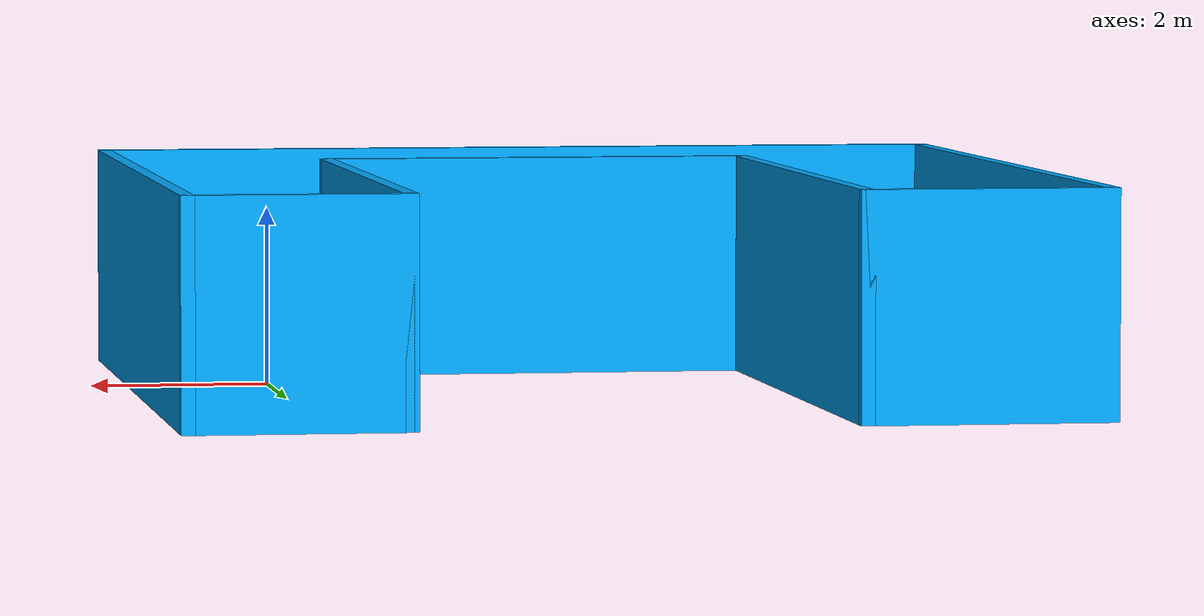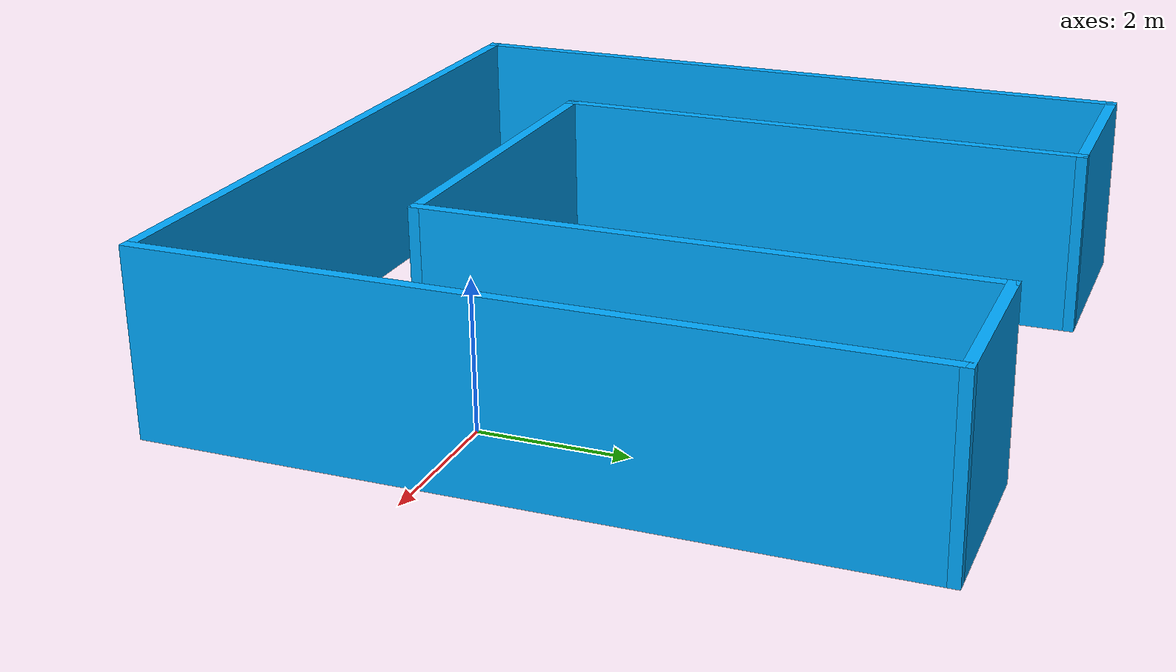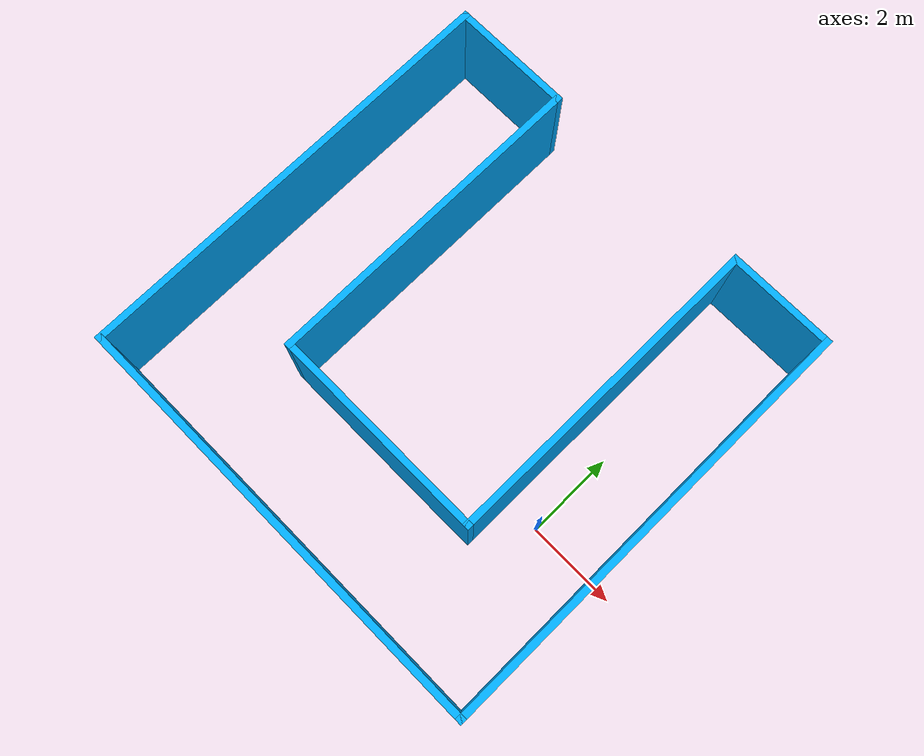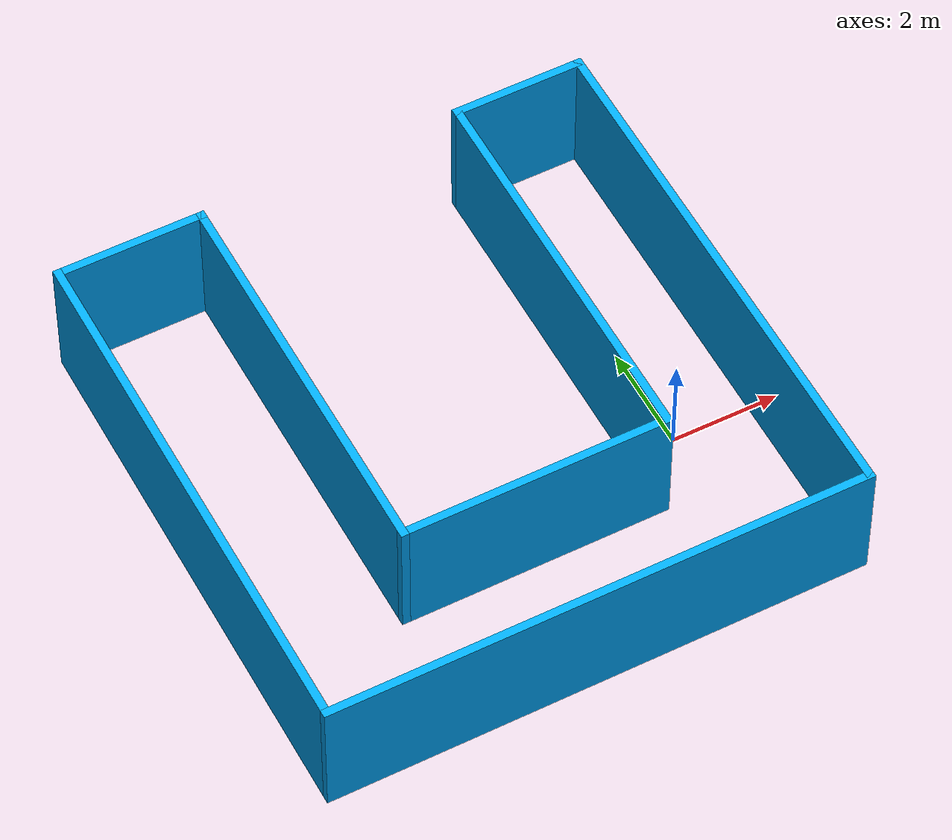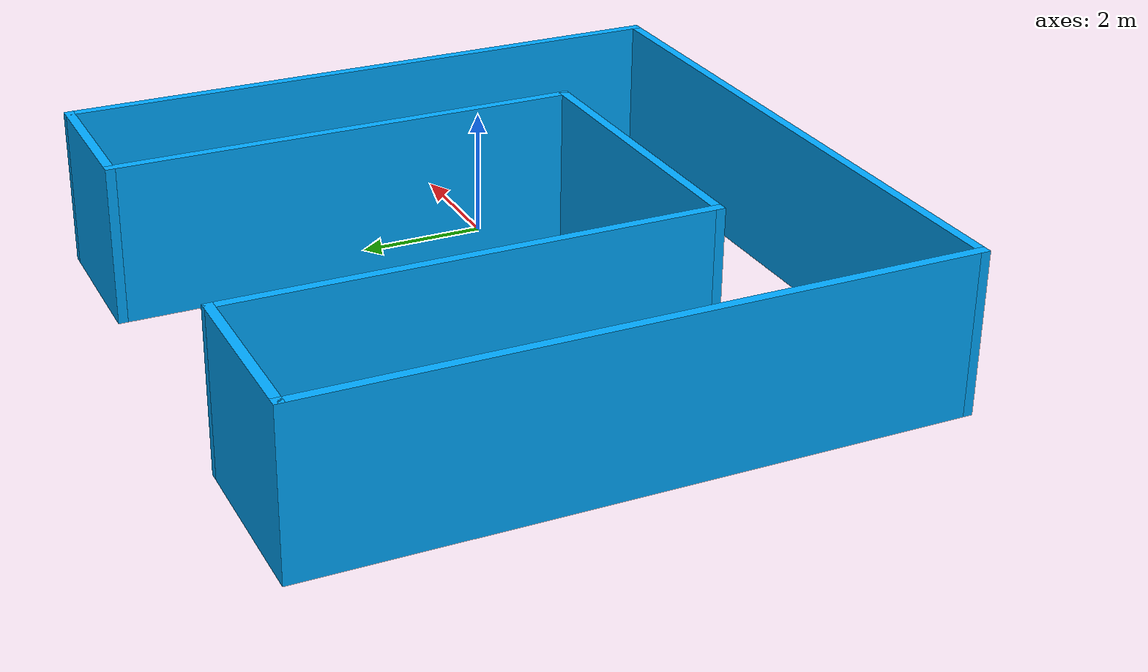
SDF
<?xml version='1.0'?>
<sdf version='1.6'>
  <model name='house_01'>
    <pose frame=''>-3.4025 1.29244 0 0 -0 0</pose>
    <link name='Wall_1'>
      <collision name='Wall_1_Collision'>
        <geometry>
          <box>
            <size>10 0.15 2.5</size>
          </box>
        </geometry>
        <pose frame=''>0 0 1.25 0 -0 0</pose>
      </collision>
      <visual name='Wall_1_Visual'>
        <pose frame=''>0 0 1.25 0 -0 0</pose>
        <geometry>
          <box>
            <size>10 0.15 2.5</size>
          </box>
        </geometry>
        <material>
          <script>
            <uri>file://media/materials/scripts/gazebo.material</uri>
            <name>Gazebo/Grey</name>
          </script>
          <ambient>0 0.666667 1 1</ambient>
        </material>
        <meta>
          <layer>0</layer>
        </meta>
      </visual>
      <pose frame=''>-4.925 0 0 0 -0 1.5708</pose>
    </link>
    <link name='Wall_10'>
      <collision name='Wall_10_Collision'>
        <geometry>
          <box>
            <size>7.5 0.15 2.5</size>
          </box>
        </geometry>
        <pose frame=''>0 0 1.25 0 -0 0</pose>
      </collision>
      <visual name='Wall_10_Visual'>
        <pose frame=''>0 0 1.25 0 -0 0</pose>
        <geometry>
          <box>
            <size>7.5 0.15 2.5</size>
          </box>
        </geometry>
        <material>
          <script>
            <uri>file://media/materials/scripts/gazebo.material</uri>
            <name>Gazebo/Grey</name>
          </script>
          <ambient>0 0.666667 1 1</ambient>
        </material>
        <meta>
          <layer>0</layer>
        </meta>
      </visual>
      <pose frame=''>-2.275 1.25 0 0 -0 1.5708</pose>
    </link>
    <link name='Wall_11'>
      <collision name='Wall_11_Collision'>
        <geometry>
          <box>
            <size>2.8 0.15 2.5</size>
          </box>
        </geometry>
        <pose frame=''>0 0 1.25 0 -0 0</pose>
      </collision>
      <visual name='Wall_11_Visual'>
        <pose frame=''>0 0 1.25 0 -0 0</pose>
        <geometry>
          <box>
            <size>2.8 0.15 2.5</size>
          </box>
        </geometry>
        <material>
          <script>
            <uri>file://media/materials/scripts/gazebo.material</uri>
            <name>Gazebo/Grey</name>
          </script>
          <ambient>0 0.666667 1 1</ambient>
        </material>
        <meta>
          <layer>0</layer>
        </meta>
      </visual>
      <pose frame=''>-3.6 4.925 0 0 -0 3.14159</pose>
    </link>
    <link name='Wall_3'>
      <collision name='Wall_3_Collision'>
        <geometry>
          <box>
            <size>10 0.15 2.5</size>
          </box>
        </geometry>
        <pose frame=''>0 0 1.25 0 -0 0</pose>
      </collision>
      <visual name='Wall_3_Visual'>
        <pose frame=''>0 0 1.25 0 -0 0</pose>
        <geometry>
          <box>
            <size>10 0.15 2.5</size>
          </box>
        </geometry>
        <material>
          <script>
            <uri>file://media/materials/scripts/gazebo.material</uri>
            <name>Gazebo/Grey</name>
          </script>
          <ambient>0 0.666667 1 1</ambient>
        </material>
        <meta>
          <layer>0</layer>
        </meta>
      </visual>
      <pose frame=''>0 -4.925 0 0 -0 0</pose>
    </link>
    <link name='Wall_5'>
      <collision name='Wall_5_Collision'>
        <geometry>
          <box>
            <size>10 0.15 2.5</size>
          </box>
        </geometry>
        <pose frame=''>0 0 1.25 0 -0 0</pose>
      </collision>
      <visual name='Wall_5_Visual'>
        <pose frame=''>0 0 1.25 0 -0 0</pose>
        <geometry>
          <box>
            <size>10 0.15 2.5</size>
          </box>
        </geometry>
        <material>
          <script>
            <uri>file://media/materials/scripts/gazebo.material</uri>
            <name>Gazebo/Grey</name>
          </script>
          <ambient>0 0.666667 1 1</ambient>
        </material>
        <meta>
          <layer>0</layer>
        </meta>
      </visual>
      <pose frame=''>4.925 0 0 0 -0 1.5708</pose>
    </link>
    <link name='Wall_6'>
      <collision name='Wall_6_Collision'>
        <geometry>
          <box>
            <size>2.5 0.15 2.5</size>
          </box>
        </geometry>
        <pose frame=''>0 0 1.25 0 -0 0</pose>
      </collision>
      <visual name='Wall_6_Visual'>
        <pose frame=''>0 0 1.25 0 -0 0</pose>
        <geometry>
          <box>
            <size>2.5 0.15 2.5</size>
          </box>
        </geometry>
        <material>
          <script>
            <uri>file://media/materials/scripts/gazebo.material</uri>
            <name>Gazebo/Grey</name>
          </script>
          <ambient>0 0.666667 1 1</ambient>
        </material>
        <meta>
          <layer>0</layer>
        </meta>
      </visual>
      <pose frame=''>3.75 4.925 0 0 -0 3.14159</pose>
    </link>
    <link name='Wall_8'>
      <collision name='Wall_8_Collision'>
        <geometry>
          <box>
            <size>7.5 0.15 2.5</size>
          </box>
        </geometry>
        <pose frame=''>0 0 1.25 0 -0 0</pose>
      </collision>
      <visual name='Wall_8_Visual'>
        <pose frame=''>0 0 1.25 0 -0 0</pose>
        <geometry>
          <box>
            <size>7.5 0.15 2.5</size>
          </box>
        </geometry>
        <material>
          <script>
            <uri>file://media/materials/scripts/gazebo.material</uri>
            <name>Gazebo/Grey</name>
          </script>
          <ambient>0 0.666667 1 1</ambient>
        </material>
        <meta>
          <layer>0</layer>
        </meta>
      </visual>
      <pose frame=''>2.575 1.25 0 0 0 -1.5708</pose>
    </link>
    <link name='Wall_9'>
      <collision name='Wall_9_Collision'>
        <geometry>
          <box>
            <size>5 0.15 2.5</size>
          </box>
        </geometry>
        <pose frame=''>0 0 1.25 0 -0 0</pose>
      </collision>
      <visual name='Wall_9_Visual'>
        <pose frame=''>0 0 1.25 0 -0 0</pose>
        <geometry>
          <box>
            <size>5 0.15 2.5</size>
          </box>
        </geometry>
        <material>
          <script>
            <uri>file://media/materials/scripts/gazebo.material</uri>
            <name>Gazebo/Grey</name>
          </script>
          <ambient>0 0.666667 1 1</ambient>
        </material>
        <meta>
          <layer>0</layer>
        </meta>
      </visual>
      <pose frame=''>0.15 -2.425 0 0 -0 3.14159</pose>
    </link>
    <static>1</static>
  </model>
</sdf>
